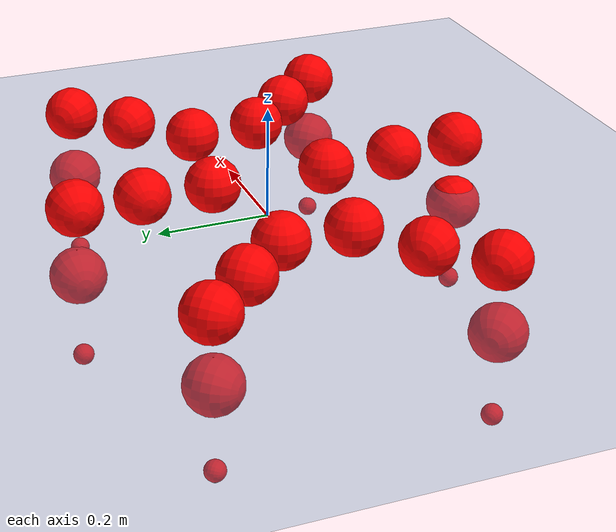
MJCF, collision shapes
<mujoco model="Golem">
  <compiler angle="radian" assetdir="assets" balanceinertia="true" inertiafromgeom="false"/>

  <option timestep="0.005" density="1.2" viscosity="2e-05"/>

  <size nkey="1"/>

  <visual>
    <quality shadowsize="8192"/>
    <map shadowclip="0.5"/>
  </visual>

  <default>
    <default class="/">
      <joint armature="0.01" damping="0.01" frictionloss="0.01"/>
      <geom contype="0" conaffinity="0" group="1" solref="-1000 -80"/>
      <site size="0.01 0.005 0.005" group="5"/>
      <general forcelimited="true" biastype="affine" gainprm="25" biasprm="0 -25 -0.5"/>
      <default class="visual">
        <geom type="mesh" group="2"/>
      </default>
      <default class="collision">
        <geom group="3"/>
      </default>
      <default class="foot">
        <geom size="0.01 0 0" condim="6" group="4" priority="1" solimp="0.015 1 0.01"/>
      </default>
      <default class="reward_collision_sphere">
        <geom group="5" rgba="1 0 0 1"/>
      </default>
    </default>
  </default>

  <asset>
    <texture type="skybox" colorspace="auto" name="//unnamed_texture_0" builtin="gradient" rgb1="0.95 0.95 0.95" rgb2="0.95 0.95 0.95" width="100" height="600"/>
    <texture type="2d" colorspace="auto" name="texplane" builtin="checker" rgb1="0.345 0.575 0.748" rgb2="0.345 0.575 0.748" markrgb="1 1 1" width="512" height="512"/>
    <material name="MatPlane" class="/" texture="texplane" texuniform="true" texrepeat="2 2" specular="0.9"/>
    <mesh name="body" class="/" file="body.stl" scale="0.001 0.001 0.001"/>
    <mesh name="coxa" class="/" file="coxa.stl" scale="0.001 0.001 0.001"/>
    <mesh name="femur" class="/" file="femur.stl" scale="0.001 0.001 0.001"/>
    <mesh name="tibia" class="/" file="tibia.stl" scale="0.001 0.001 0.001"/>
    <mesh name="tarsus" class="/" file="tarsus.stl" scale="0.001 0.001 0.001"/>
  </asset>

  <worldbody>
    <geom name="floor" class="/" size="100 100 0.125" type="plane" group="0" material="MatPlane"/>
    <light name="toplight_shadow" class="/" pos="0 0 5" dir="0.0990148 0.0990148 -0.990148" type="directional" ambient="0.04 0.04 0.04" diffuse="0.55 0.55 0.55" specular="0.12 0.12 0.12"/>
    <light name="toplight_fill" class="/" pos="0 0 5" dir="0.0990148 0.0990148 -0.990148" type="directional" castshadow="false" ambient="0.04 0.04 0.04" diffuse="0.3 0.3 0.3" specular="0.08 0.08 0.08"/>
    <body name="trunk" pos="-0.000205566 -0.000788375 0.00236141" quat="1 -0.000824951 -0.000421635 -0.000162349">
      <inertial pos="0.000477203 0.0019098 0.00372609" quat="0.999995 0.000139692 -0.000982959 -0.00305368" mass="6.81828" diaginertia="0.0683692 0.018439 0.0161809"/>
      <joint name="//unnamed_joint_0" type="free"/>
      <geom name="//unnamed_geom_1" class="/" pos="0 0 0.0703134" quat="1 0 0 0" type="mesh" rgba="0.9 0.9 0.9 1" mesh="body"/>
      <site name="imu" class="/" pos="0.181479 0.00113063 0.113644" size="0.0122643"/>
      <camera name="track" class="/" pos="0 -2.23885 0" quat="0.707107 0.707107 0 0" mode="trackcom"/>
      <camera name="ego_camera" class="/" pos="0.189956 0 0.109865" quat="-0.5 -0.5 0.5 0.5"/>
      <body name="coxa_RR" pos="-0.261259 -0.0911357 0.0735691" quat="0.381779 -0.000398159 0.000174826 -0.924254">
        <inertial pos="0.000255932 0.0020258 0.00230921" quat="0.999993 -0.00162663 -0.00132221 -0.00320611" mass="0.381583" diaginertia="0.0683436 0.0183535 0.0175621"/>
        <joint name="coxa_joint_RR" class="/" pos="0 0 0" axis="0.00230069 -0.00950507 -0.999952" stiffness="0.00213528" range="-3.14518 3.09995" armature="0.0109291" damping="0.011056" frictionloss="0.0114776"/>
        <geom name="//unnamed_geom_2" class="/" type="mesh" rgba="0.2 0.2 0.2 1" mesh="coxa"/>
        <geom name="//unnamed_geom_3" class="reward_collision_sphere" size="0.049057" pos="-0.0438361 0 0"/>
        <body name="femur_RR" pos="0.085424 -0.00471251 -0.0045316" quat="0.500201 -0.499899 0.500021 0.49988">
          <inertial pos="0.00405887 -9.7101e-05 0.00515902" quat="0.999756 0.0139417 -0.0169359 0.00266019" mass="0.373734" diaginertia="0.0680039 0.0178065 0.0159563"/>
          <joint name="femur_joint_RR" class="/" pos="0 0 0" axis="-0.00744005 -0.00211673 -0.99997" range="-3.18974 3.15312" armature="0.0116799" damping="0.0205147" frictionloss="0.0121401"/>
          <geom name="//unnamed_geom_4" class="/" type="mesh" rgba="0.9 0.9 0.9 1" mesh="femur"/>
          <geom name="//unnamed_geom_5" class="reward_collision_sphere" size="0.049057"/>
          <body name="tibia_RR" pos="0.000455051 -0.119706 0.00431683" quat="0.00068615 1 -0.000373389 -3.28871e-05">
            <inertial pos="-0.000779056 -0.000370887 0.00214453" quat="0.999991 0.00237799 0.00177861 0.00296234" mass="0.351192" diaginertia="0.0600173 0.0162115 0.014725"/>
            <joint name="tibia_joint_RR" class="/" pos="0 0 0" axis="-0.00663801 0.00095703 0.999978" stiffness="0.0020012" range="-3.15374 3.1462" armature="0.0111936" damping="0" frictionloss="0.0128752"/>
            <geom name="//unnamed_geom_6" class="/" type="mesh" rgba="0.2 0.2 0.2 1" mesh="tibia"/>
            <geom name="//unnamed_geom_7" class="reward_collision_sphere" size="0.049057"/>
            <body name="tarsus_RR" pos="0.131997 0.00121564 -0.00172634" quat="1 -0.000151929 0.000142522 0.000126723">
              <inertial pos="0.0870218 0.000704584 -0.000407113" quat="0.486718 0.491563 0.508038 0.513195" mass="0.342599" diaginertia="0.067888 0.0175171 0.0154739"/>
              <joint name="tarsus_joint_RR" class="/" pos="0 0 0" axis="-0.0204019 0.0123058 0.999716" stiffness="0.0097975" range="-3.15541 3.13278" armature="0.0110208" damping="0.0398535" frictionloss="0.0138002"/>
              <geom name="//unnamed_geom_8" class="/" type="mesh" rgba="0.9 0.9 0.9 1" mesh="tarsus"/>
              <geom name="foot_1" class="foot" size="0.011614" pos="0.163655 0 0" quat="0 -0.707107 0 0.707107"/>
              <geom name="//unnamed_geom_10" class="reward_collision_sphere" size="0.049057"/>
              <geom name="//unnamed_geom_11" class="reward_collision_sphere" size="0.0183964" pos="0.157079 0 0"/>
              <site name="foot_1" class="foot" pos="0.163655 0 0" quat="0 -0.707107 0 0.707107" size="0.0122643"/>
            </body>
          </body>
        </body>
      </body>
      <body name="coxa_RM" pos="-0.00254227 -0.151728 0.0755233" quat="0.708698 -0.000185832 -0.000478394 -0.705512">
        <inertial pos="0.00151446 -0.000382882 0.00306817" quat="0.999993 -0.00266449 -0.00162517 -0.00187955" mass="0.367573" diaginertia="0.0696722 0.017643 0.0153495"/>
        <joint name="coxa_joint_RM" class="/" pos="0 0 0" axis="-0.000105792 -0.000564723 -1" range="-3.18715 3.10468" armature="0.0135017" damping="0.0110146" frictionloss="0.0111114"/>
        <geom name="//unnamed_geom_12" class="/" type="mesh" rgba="0.2 0.2 0.2 1" mesh="coxa"/>
        <geom name="//unnamed_geom_13" class="reward_collision_sphere" size="0.049057" pos="-0.0438361 0 0"/>
        <body name="femur_RM" pos="0.0850789 -0.00258428 0.00579793" quat="0.499956 -0.50007 0.500106 0.499868">
          <inertial pos="-0.00337708 -0.000696342 0.000170889" quat="0.999798 -0.00157725 -0.00432554 -0.0195585" mass="0.35915" diaginertia="0.0690541 0.0179726 0.0156446"/>
          <joint name="femur_joint_RM" class="/" pos="0 0 0" axis="0.00664927 0.00396484 -0.99997" range="-3.14221 3.15683" armature="0.0135579" damping="0.0272167" frictionloss="0.0113313"/>
          <geom name="//unnamed_geom_14" class="/" type="mesh" rgba="0.9 0.9 0.9 1" mesh="femur"/>
          <geom name="//unnamed_geom_15" class="reward_collision_sphere" size="0.049057"/>
          <body name="tibia_RM" pos="-0.00547274 -0.121113 0.000914708" quat="1.00319e-05 1 5.28573e-05 0.000175267">
            <inertial pos="0.00414768 0.0021352 -0.00069769" quat="0.999941 0.000590669 0.010883 -0.000398894" mass="0.384833" diaginertia="0.0676802 0.0182323 0.0173071"/>
            <joint name="tibia_joint_RM" class="/" pos="0 0 0" axis="-0.000137285 -1.36394e-05 1" range="-3.13401 3.09673" armature="0.0117446" damping="0.0154341" frictionloss="0.0109278"/>
            <geom name="//unnamed_geom_16" class="/" type="mesh" rgba="0.2 0.2 0.2 1" mesh="tibia"/>
            <geom name="//unnamed_geom_17" class="reward_collision_sphere" size="0.049057"/>
            <body name="tarsus_RM" pos="0.124529 0.00218092 0.00252289" quat="1 -5.33745e-05 -0.000300362 0.000245308">
              <inertial pos="0.0859167 -0.00217288 -0.000929369" quat="0.499142 0.495799 0.494703 0.510206" mass="0.386414" diaginertia="0.0706789 0.0182945 0.0163342"/>
              <joint name="tarsus_joint_RM" class="/" pos="0 0 0" axis="-0.00428787 0.000950735 0.99999" stiffness="0.00486309" range="-3.11936 3.14498" armature="0.0123713" damping="0.0178296" frictionloss="0.0128883"/>
              <geom name="//unnamed_geom_18" class="/" type="mesh" rgba="0.9 0.9 0.9 1" mesh="tarsus"/>
              <geom name="foot_2" class="foot" size="0.0135908" pos="0.163655 0 0" quat="0 -0.707107 0 0.707107"/>
              <geom name="//unnamed_geom_20" class="reward_collision_sphere" size="0.049057"/>
              <geom name="//unnamed_geom_21" class="reward_collision_sphere" size="0.0183964" pos="0.157079 0 0"/>
              <site name="foot_2" class="foot" pos="0.163655 0 0" quat="0 -0.707107 0 0.707107" size="0.0122643"/>
            </body>
          </body>
        </body>
      </body>
      <body name="coxa_RF" pos="0.260328 -0.0953199 0.0704499" quat="0.923706 -5.11163e-05 0.00032738 -0.383103">
        <inertial pos="0.00482715 0.00269297 0.00102503" quat="0.999958 -0.00353997 0.00823866 0.00188168" mass="0.351461" diaginertia="0.0689441 0.0187741 0.0165398"/>
        <joint name="coxa_joint_RF" class="/" pos="0 0 0" axis="-0.00149338 0.00352468 -0.999993" stiffness="0.00243936" range="-3.1778 3.14774" armature="0.0118348" damping="0.0102168" frictionloss="0.0108055"/>
        <geom name="//unnamed_geom_22" class="/" type="mesh" rgba="0.2 0.2 0.2 1" mesh="coxa"/>
        <geom name="//unnamed_geom_23" class="reward_collision_sphere" size="0.049057" pos="-0.0438361 0 0"/>
        <body name="femur_RF" pos="0.0841629 0.00160529 -0.0030339" quat="0.500014 -0.499471 0.50097 0.499544">
          <inertial pos="0.000912567 -0.00401098 0.0012362" quat="0.999982 -0.00216184 -0.0055432 -0.000946316" mass="0.365856" diaginertia="0.0663505 0.0178115 0.0155391"/>
          <joint name="femur_joint_RF" class="/" pos="0 0 0" axis="0.00159374 -0.00233341 -0.999996" stiffness="0.0198324" range="-3.09264 3.13655" armature="0.0116994" damping="0.018079" frictionloss="0.0107188"/>
          <geom name="//unnamed_geom_24" class="/" type="mesh" rgba="0.9 0.9 0.9 1" mesh="femur"/>
          <geom name="//unnamed_geom_25" class="reward_collision_sphere" size="0.049057"/>
          <body name="tibia_RF" pos="-0.00144275 -0.122576 -0.00169781" quat="-0.000132275 1 -0.000530551 -0.000439029">
            <inertial pos="0.0031339 0.000726165 -0.00233005" quat="0.999989 0.00397898 -0.00209401 0.00156993" mass="0.36803" diaginertia="0.0675215 0.0178766 0.0159921"/>
            <joint name="tibia_joint_RF" class="/" pos="0 0 0" axis="0.0135972 0.0033557 0.999902" stiffness="0.00930705" range="-3.1278 3.14777" armature="0.0110639" damping="0.0404692" frictionloss="0.0126583"/>
            <geom name="//unnamed_geom_26" class="/" type="mesh" rgba="0.2 0.2 0.2 1" mesh="tibia"/>
            <geom name="//unnamed_geom_27" class="reward_collision_sphere" size="0.049057"/>
            <body name="tarsus_RF" pos="0.125639 -0.00287719 0.00243849" quat="1 -2.53234e-05 -3.61506e-06 3.54799e-05">
              <inertial pos="0.084979 0.000306104 -0.000332079" quat="0.510106 0.495473 0.494344 0.499923" mass="0.382348" diaginertia="0.0686408 0.0167185 0.0164203"/>
              <joint name="tarsus_joint_RF" class="/" pos="0 0 0" axis="0.00532353 -0.00186879 0.999984" range="-3.16635 3.12928" armature="0.0115011" damping="0" frictionloss="0.00925593"/>
              <geom name="//unnamed_geom_28" class="/" type="mesh" rgba="0.9 0.9 0.9 1" mesh="tarsus"/>
              <geom name="foot_3" class="foot" size="0.0107261" pos="0.163655 0 0" quat="0 -0.707107 0 0.707107"/>
              <geom name="//unnamed_geom_30" class="reward_collision_sphere" size="0.049057"/>
              <geom name="//unnamed_geom_31" class="reward_collision_sphere" size="0.0183964" pos="0.157079 0 0"/>
              <site name="foot_3" class="foot" pos="0.163655 0 0" quat="0 -0.707107 0 0.707107" size="0.0122643"/>
            </body>
          </body>
        </body>
      </body>
      <body name="coxa_LR" pos="-0.259413 0.0962622 0.0718974" quat="0.382071 -0.000874528 -0.000925148 0.924132">
        <inertial pos="-0.00189217 0.00236309 0.00447316" quat="0.999987 0.00207361 -0.00299572 -0.00352858" mass="0.403189" diaginertia="0.0717264 0.0189119 0.0176685"/>
        <joint name="coxa_joint_LR" class="/" pos="0 0 0" axis="-0.00455513 -0.00412387 -0.999981" range="-3.18847 3.04763" armature="0.0116538" damping="0.0115824" frictionloss="0.0150335"/>
        <geom name="//unnamed_geom_32" class="/" type="mesh" rgba="0.2 0.2 0.2 1" mesh="coxa"/>
        <geom name="//unnamed_geom_33" class="reward_collision_sphere" size="0.049057" pos="-0.0438361 0 0"/>
        <body name="femur_LR" pos="0.086609 0.000399618 0.00440274" quat="0.499795 -0.499995 0.500709 0.4995">
          <inertial pos="-6.59244e-05 -0.00148552 -0.0012263" quat="0.999988 -0.00422781 -0.00207981 0.000931624" mass="0.364349" diaginertia="0.06407 0.0162682 0.0160362"/>
          <joint name="femur_joint_LR" class="/" pos="0 0 0" axis="0.0093519 -0.00218465 0.999954" stiffness="0.00335312" range="-3.12429 3.15848" armature="0.0122701" damping="0.0117138" frictionloss="0.0107486"/>
          <geom name="//unnamed_geom_34" class="/" type="mesh" rgba="0.9 0.9 0.9 1" mesh="femur"/>
          <geom name="//unnamed_geom_35" class="reward_collision_sphere" size="0.049057"/>
          <body name="tibia_LR" pos="0.00182022 -0.120798 -0.00196395" quat="0.000291821 1 -0.000230229 0.000340626">
            <inertial pos="0.000392644 -0.00362596 -0.000315843" quat="0.99998 0.00351873 -0.00416816 -0.00334821" mass="0.36647" diaginertia="0.0618347 0.0170274 0.0167207"/>
            <joint name="tibia_joint_LR" class="/" pos="0 0 0" axis="-0.00103283 -0.00015053 -0.999999" range="-3.1262 3.15345" armature="0.0138322" damping="0" frictionloss="0.0128833"/>
            <geom name="//unnamed_geom_36" class="/" type="mesh" rgba="0.2 0.2 0.2 1" mesh="tibia"/>
            <geom name="//unnamed_geom_37" class="reward_collision_sphere" size="0.049057"/>
            <body name="tarsus_LR" pos="0.125949 -0.000828156 -0.00129911" quat="1 0.000252286 -0.000427762 0.000764273">
              <inertial pos="0.0860686 -0.000324263 -0.00236871" quat="0.499201 0.507008 0.497905 0.495814" mass="0.386053" diaginertia="0.0692878 0.0185917 0.0170582"/>
              <joint name="tarsus_joint_LR" class="/" pos="0 0 0" axis="-0.00284664 0.00129923 -0.999995" range="-3.18592 3.09175" armature="0.0152135" damping="0.0317592" frictionloss="0.0108447"/>
              <geom name="//unnamed_geom_38" class="/" type="mesh" rgba="0.9 0.9 0.9 1" mesh="tarsus"/>
              <geom name="foot_4" class="foot" size="0.0135692" pos="0.163655 0 0" quat="0.707107 0 -0.707107 0"/>
              <geom name="//unnamed_geom_40" class="reward_collision_sphere" size="0.049057"/>
              <geom name="//unnamed_geom_41" class="reward_collision_sphere" size="0.0183964" pos="0.157079 0 0"/>
              <site name="foot_4" class="foot" pos="0.163655 0 0" quat="0.707107 0 -0.707107 0" size="0.0122643"/>
            </body>
          </body>
        </body>
      </body>
      <body name="coxa_LM" pos="0.000148878 0.144547 0.0743569" quat="0.708114 -0.00235448 -0.000345464 0.706094">
        <inertial pos="-0.00176922 0.0027196 -0.000686855" quat="0.999965 0.0080434 -0.000581731 0.00225153" mass="0.364714" diaginertia="0.0688154 0.0183204 0.016321"/>
        <joint name="coxa_joint_LM" class="/" pos="0 0 0" axis="0.0014062 0.00709664 -0.999974" range="-3.12949 3.12485" armature="0.00933238" damping="0.00373314" frictionloss="0.0137449"/>
        <geom name="//unnamed_geom_42" class="/" type="mesh" rgba="0.2 0.2 0.2 1" mesh="coxa"/>
        <geom name="//unnamed_geom_43" class="reward_collision_sphere" size="0.049057" pos="-0.0438361 0 0"/>
        <body name="femur_LM" pos="0.0817315 0.0011667 0.00089614" quat="0.500045 -0.50022 0.499903 0.499831">
          <inertial pos="0.00152618 -0.000416504 0.00282807" quat="0.999992 -0.00157845 -0.00101677 0.00358763" mass="0.35586" diaginertia="0.0643299 0.0179088 0.0159744"/>
          <joint name="femur_joint_LM" class="/" pos="0 0 0" axis="0.00350802 0.00558144 0.999978" stiffness="0.00230905" range="-3.13109 3.18926" armature="0.012441" damping="0" frictionloss="0.0125179"/>
          <geom name="//unnamed_geom_44" class="/" type="mesh" rgba="0.9 0.9 0.9 1" mesh="femur"/>
          <geom name="//unnamed_geom_45" class="reward_collision_sphere" size="0.049057"/>
          <body name="tibia_LM" pos="0.000109685 -0.117187 0.00156424" quat="0.000289763 1 0.000379457 0.000860961">
            <inertial pos="-0.00411998 -0.0047545 -0.00514884" quat="0.999992 -0.0025089 -0.00209857 0.0021236" mass="0.365806" diaginertia="0.0646439 0.018 0.0157641"/>
            <joint name="tibia_joint_LM" class="/" pos="0 0 0" axis="-0.00442197 -0.00147675 -0.999989" stiffness="0.00711935" range="-3.08829 3.12147" armature="0.0123119" damping="0.0104133" frictionloss="0.0128284"/>
            <geom name="//unnamed_geom_46" class="/" type="mesh" rgba="0.2 0.2 0.2 1" mesh="tibia"/>
            <geom name="//unnamed_geom_47" class="reward_collision_sphere" size="0.049057"/>
            <body name="tarsus_LM" pos="0.126427 0.00182647 -0.00137365" quat="1 -5.176e-05 -0.000113621 9.57659e-05">
              <inertial pos="0.0899613 0.00203583 0.000588995" quat="0.502157 0.505072 0.494322 0.498383" mass="0.349763" diaginertia="0.0657782 0.0154575 0.0147797"/>
              <joint name="tarsus_joint_LM" class="/" pos="0 0 0" axis="0.00503996 0.00571164 -0.999971" range="-3.02286 3.17809" armature="0.0122132" damping="0.00466474" frictionloss="0.0119338"/>
              <geom name="//unnamed_geom_48" class="/" type="mesh" rgba="0.9 0.9 0.9 1" mesh="tarsus"/>
              <geom name="foot_5" class="foot" size="0.0119244" pos="0.163655 0 0" quat="0.707107 0 -0.707107 0"/>
              <geom name="//unnamed_geom_50" class="reward_collision_sphere" size="0.049057"/>
              <geom name="//unnamed_geom_51" class="reward_collision_sphere" size="0.0183964" pos="0.157079 0 0"/>
              <site name="foot_5" class="foot" pos="0.163655 0 0" quat="0.707107 0 -0.707107 0" size="0.0122643"/>
            </body>
          </body>
        </body>
      </body>
      <body name="coxa_LF" pos="0.259207 0.0925742 0.0673768" quat="0.924449 -0.000144754 -0.000132708 0.381306">
        <inertial pos="0.000606731 -0.00442113 0.000409365" quat="0.999997 0.00085078 0.000569828 -0.00232711" mass="0.353515" diaginertia="0.062345 0.016362 0.0149788"/>
        <joint name="coxa_joint_LF" class="/" pos="0 0 0" axis="0.00286917 -0.00155171 -0.999995" stiffness="0.00267963" range="-3.15371 3.16455" armature="0.00900051" damping="0.0250412" frictionloss="0.0137862"/>
        <geom name="//unnamed_geom_52" class="/" type="mesh" rgba="0.2 0.2 0.2 1" mesh="coxa"/>
        <geom name="//unnamed_geom_53" class="reward_collision_sphere" size="0.049057" pos="-0.0438361 0 0"/>
        <body name="femur_LF" pos="0.0850221 0.00627428 0.00371139" quat="0.499446 -0.500364 0.49994 0.50025">
          <inertial pos="-9.21711e-06 -0.00277536 -0.00508414" quat="0.999928 -0.0106736 -0.00513396 0.00192463" mass="0.377479" diaginertia="0.0664231 0.0164497 0.0157981"/>
          <joint name="femur_joint_LF" class="/" pos="0 0 0" axis="0.00574344 0.00271868 0.99998" stiffness="0.014906" range="-3.1273 3.21905" armature="0.0123922" damping="0.00122949" frictionloss="0.0138084"/>
          <geom name="//unnamed_geom_54" class="/" type="mesh" rgba="0.9 0.9 0.9 1" mesh="femur"/>
          <geom name="//unnamed_geom_55" class="reward_collision_sphere" size="0.049057"/>
          <body name="tibia_LF" pos="0.000923548 -0.121863 0.00311025" quat="-0.00010637 0.999999 -9.51314e-05 -0.00128017">
            <inertial pos="0.00258011 0.00361814 -0.000539657" quat="0.999941 0.00756389 0.000904416 0.0077708" mass="0.370462" diaginertia="0.0660227 0.0176966 0.0156033"/>
            <joint name="tibia_joint_LF" class="/" pos="0 0 0" axis="0.00842181 0.000889372 -0.999964" range="-3.102 3.15981" armature="0.0124225" damping="0.0092885" frictionloss="0.0103774"/>
            <geom name="//unnamed_geom_56" class="/" type="mesh" rgba="0.2 0.2 0.2 1" mesh="tibia"/>
            <geom name="//unnamed_geom_57" class="reward_collision_sphere" size="0.049057"/>
            <body name="tarsus_LF" pos="0.12791 -7.8417e-05 -0.00228675" quat="0.999996 0.00125716 -0.00220958 -0.000923286">
              <inertial pos="0.0876719 -0.000887945 -0.000326815" quat="0.497472 0.50575 0.499687 0.497042" mass="0.364447" diaginertia="0.0703336 0.0184009 0.0169024"/>
              <joint name="tarsus_joint_LF" class="/" pos="0 0 0" axis="0.0153442 0.020156 -0.999679" stiffness="0.0171995" range="-3.09491 3.17459" armature="0.0136513" damping="0.0333257" frictionloss="0.0131107"/>
              <geom name="//unnamed_geom_58" class="/" type="mesh" rgba="0.9 0.9 0.9 1" mesh="tarsus"/>
              <geom name="foot_6" class="foot" size="0.0131024" pos="0.163655 0 0" quat="0.707107 0 -0.707107 0"/>
              <geom name="//unnamed_geom_60" class="reward_collision_sphere" size="0.049057"/>
              <geom name="//unnamed_geom_61" class="reward_collision_sphere" size="0.0183964" pos="0.157079 0 0"/>
              <site name="foot_6" class="foot" pos="0.163655 0 0" quat="0.707107 0 -0.707107 0" size="0.0122643"/>
            </body>
          </body>
        </body>
      </body>
    </body>
  </worldbody>

  <contact>
    <pair class="/" geom1="floor" geom2="foot_1" name="//unnamed_contact_0"/>
    <pair class="/" geom1="floor" geom2="foot_2" name="//unnamed_contact_1"/>
    <pair class="/" geom1="floor" geom2="foot_3" name="//unnamed_contact_2"/>
    <pair class="/" geom1="floor" geom2="foot_4" name="//unnamed_contact_3"/>
    <pair class="/" geom1="floor" geom2="foot_5" name="//unnamed_contact_4"/>
    <pair class="/" geom1="floor" geom2="foot_6" name="//unnamed_contact_5"/>
  </contact>

  <actuator>
    <general name="coxa_joint_RR" class="/" joint="coxa_joint_RR" forcerange="-10.2084 10.2084" gainprm="29.9711" biasprm="0 -29.9711 -0.605813"/>
    <general name="femur_joint_RR" class="/" joint="femur_joint_RR" forcerange="-9.50342 9.50342" gainprm="29.9711" biasprm="0 -29.9711 -0.605813"/>
    <general name="tibia_joint_RR" class="/" joint="tibia_joint_RR" forcerange="-10.5537 10.5537" gainprm="29.9711" biasprm="0 -29.9711 -0.605813"/>
    <general name="tarsus_joint_RR" class="/" joint="tarsus_joint_RR" forcerange="-9.32057 9.32057" gainprm="29.9711" biasprm="0 -29.9711 -0.605813"/>
    <general name="coxa_joint_RM" class="/" joint="coxa_joint_RM" forcerange="-8.99297 8.99297" gainprm="29.9711" biasprm="0 -29.9711 -0.605813"/>
    <general name="femur_joint_RM" class="/" joint="femur_joint_RM" forcerange="-8.85168 8.85168" gainprm="29.9711" biasprm="0 -29.9711 -0.605813"/>
    <general name="tibia_joint_RM" class="/" joint="tibia_joint_RM" forcerange="-9.89015 9.89015" gainprm="29.9711" biasprm="0 -29.9711 -0.605813"/>
    <general name="tarsus_joint_RM" class="/" joint="tarsus_joint_RM" forcerange="-7.47968 7.47968" gainprm="29.9711" biasprm="0 -29.9711 -0.605813"/>
    <general name="coxa_joint_RF" class="/" joint="coxa_joint_RF" forcerange="-9.78153 9.78153" gainprm="29.9711" biasprm="0 -29.9711 -0.605813"/>
    <general name="femur_joint_RF" class="/" joint="femur_joint_RF" forcerange="-8.92909 8.92909" gainprm="29.9711" biasprm="0 -29.9711 -0.605813"/>
    <general name="tibia_joint_RF" class="/" joint="tibia_joint_RF" forcerange="-7.79386 7.79386" gainprm="29.9711" biasprm="0 -29.9711 -0.605813"/>
    <general name="tarsus_joint_RF" class="/" joint="tarsus_joint_RF" forcerange="-9.54294 9.54294" gainprm="29.9711" biasprm="0 -29.9711 -0.605813"/>
    <general name="coxa_joint_LR" class="/" joint="coxa_joint_LR" forcerange="-9.06391 9.06391" gainprm="29.9711" biasprm="0 -29.9711 -0.605813"/>
    <general name="femur_joint_LR" class="/" joint="femur_joint_LR" forcerange="-9.49456 9.49456" gainprm="29.9711" biasprm="0 -29.9711 -0.605813"/>
    <general name="tibia_joint_LR" class="/" joint="tibia_joint_LR" forcerange="-8.34344 8.34344" gainprm="29.9711" biasprm="0 -29.9711 -0.605813"/>
    <general name="tarsus_joint_LR" class="/" joint="tarsus_joint_LR" forcerange="-8.93505 8.93505" gainprm="29.9711" biasprm="0 -29.9711 -0.605813"/>
    <general name="coxa_joint_LM" class="/" joint="coxa_joint_LM" forcerange="-8.34512 8.34512" gainprm="29.9711" biasprm="0 -29.9711 -0.605813"/>
    <general name="femur_joint_LM" class="/" joint="femur_joint_LM" forcerange="-8.11264 8.11264" gainprm="29.9711" biasprm="0 -29.9711 -0.605813"/>
    <general name="tibia_joint_LM" class="/" joint="tibia_joint_LM" forcerange="-9.15024 9.15024" gainprm="29.9711" biasprm="0 -29.9711 -0.605813"/>
    <general name="tarsus_joint_LM" class="/" joint="tarsus_joint_LM" forcerange="-8.12817 8.12817" gainprm="29.9711" biasprm="0 -29.9711 -0.605813"/>
    <general name="coxa_joint_LF" class="/" joint="coxa_joint_LF" forcerange="-8.19687 8.19687" gainprm="29.9711" biasprm="0 -29.9711 -0.605813"/>
    <general name="femur_joint_LF" class="/" joint="femur_joint_LF" forcerange="-9.80184 9.80184" gainprm="29.9711" biasprm="0 -29.9711 -0.605813"/>
    <general name="tibia_joint_LF" class="/" joint="tibia_joint_LF" forcerange="-8.93546 8.93546" gainprm="29.9711" biasprm="0 -29.9711 -0.605813"/>
    <general name="tarsus_joint_LF" class="/" joint="tarsus_joint_LF" forcerange="-8.31319 8.31319" gainprm="29.9711" biasprm="0 -29.9711 -0.605813"/>
  </actuator>

  <sensor>
    <gyro site="imu" name="imu_angular_velocity"/>
    <velocimeter site="imu" name="imu_linear_velocity"/>
    <framelinvel objtype="site" objname="foot_1" name="foot_1_global_linear_velocity"/>
    <framelinvel objtype="site" objname="foot_2" name="foot_2_global_linear_velocity"/>
    <framelinvel objtype="site" objname="foot_3" name="foot_3_global_linear_velocity"/>
    <framelinvel objtype="site" objname="foot_4" name="foot_4_global_linear_velocity"/>
    <framelinvel objtype="site" objname="foot_5" name="foot_5_global_linear_velocity"/>
    <framelinvel objtype="site" objname="foot_6" name="foot_6_global_linear_velocity"/>
  </sensor>

  <keyframe>
    <key name="home" qpos="0 0 0.1457 1 0 0 0 0 0 0 0 0 0 0 0 0 0 0 0 0 0 0 0 0 0 0 0 0 0 0 0"/>
  </keyframe>
</mujoco>
